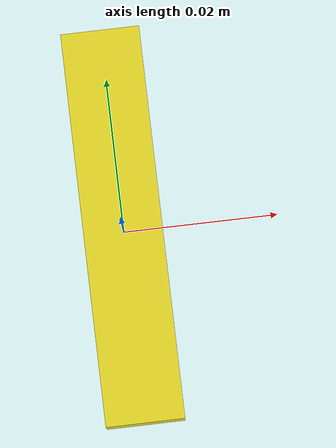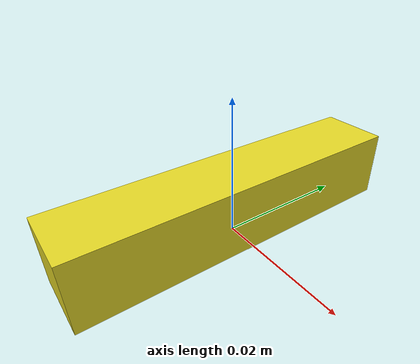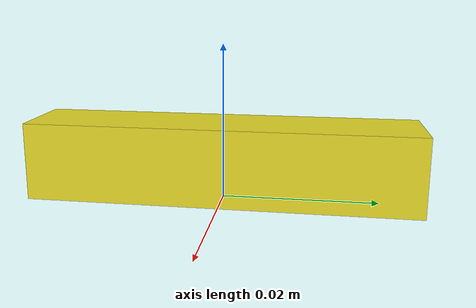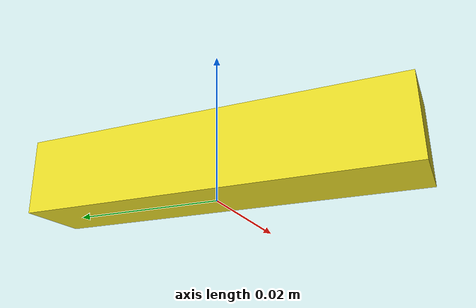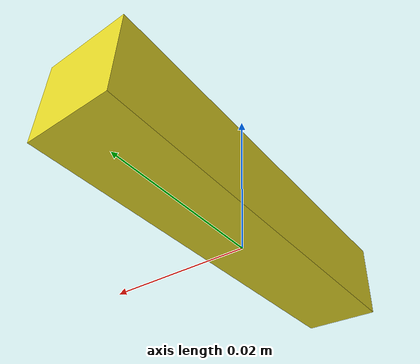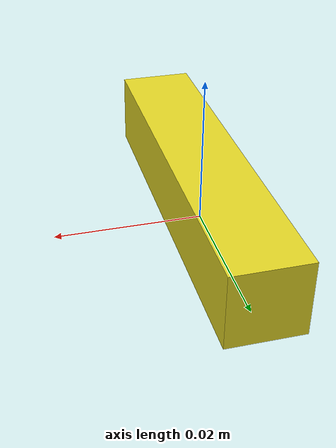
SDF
<?xml version="1.0" ?>
<sdf version="1.6">
  <model name="mathstick5">
    <static>false</static>
    <link name="link">
      <collision name="collision">
        <geometry>
          <mesh>
            <uri>model://mathstick5/meshes/MathStick5.stl</uri>
            <scale>0.001 0.001 0.001</scale>
          </mesh>
        </geometry>
        <surface>
          <friction>
            <ode>
              <!-- Set the friction coefficients -->
              <mu>100.0</mu> <!-- Adjust the value as needed -->
              <mu2>100.0</mu2> <!-- Adjust the value as needed -->
            </ode>
          </friction>
        </surface>
      </collision>
      <visual name="visual">
        <geometry>
          <mesh>
            <uri>model://mathstick5/meshes/MathStick5.stl</uri>
            <scale>0.001 0.001 0.001</scale>
          </mesh>
        </geometry>
        <material>
          <script>
            <uri>file://media/materials/scripts/gazebo.material</uri>
            <name>Gazebo/Yellow</name> <!-- Change this to the desired color -->
          </script>
        </material>
      </visual>
      <inertial>
        <mass>0.025</mass>
        <inertia>
          <ixx>0.00000541666666666667</ixx>
          <ixy>0.0</ixy>
          <ixz>0.0</ixz>
          <iyy>0.000000416666666666667</iyy>
          <iyz>0.0</iyz>
          <izz>0.00000541666666666667</izz>
        </inertia>
      </inertial>
    </link>
  </model>
</sdf>
